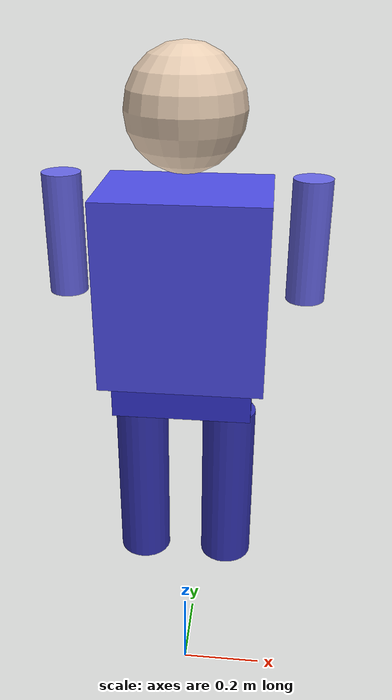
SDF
<?xml version="1.0" ?>
<sdf version="1.10">
  <model name="humanoid_robot">
    <static>false</static>

    <!-- Base/Pelvis Link -->
    <link name="pelvis">
      <pose>0 0 0.9 0 0 0</pose>
      <inertial>
        <mass>10.0</mass>
        <inertia>
          <ixx>0.1</ixx>
          <ixy>0</ixy>
          <ixz>0</ixz>
          <iyy>0.1</iyy>
          <iyz>0</iyz>
          <izz>0.1</izz>
        </inertia>
      </inertial>
      <visual name="pelvis_visual">
        <geometry>
          <box>
            <size>0.3 0.2 0.15</size>
          </box>
        </geometry>
        <material>
          <ambient>0.2 0.2 0.8 1</ambient>
          <diffuse>0.2 0.2 0.8 1</diffuse>
        </material>
      </visual>
      <collision name="pelvis_collision">
        <geometry>
          <box>
            <size>0.3 0.2 0.15</size>
          </box>
        </geometry>
      </collision>
    </link>

    <!-- Torso Link -->
    <link name="torso">
      <pose>0 0 1.1 0 0 0</pose>
      <inertial>
        <mass>15.0</mass>
        <inertia>
          <ixx>0.2</ixx>
          <ixy>0</ixy>
          <ixz>0</ixz>
          <iyy>0.2</iyy>
          <iyz>0</iyz>
          <izz>0.15</izz>
        </inertia>
      </inertial>
      <visual name="torso_visual">
        <geometry>
          <box>
            <size>0.35 0.25 0.4</size>
          </box>
        </geometry>
        <material>
          <ambient>0.3 0.3 0.9 1</ambient>
          <diffuse>0.3 0.3 0.9 1</diffuse>
        </material>
      </visual>
      <collision name="torso_collision">
        <geometry>
          <box>
            <size>0.35 0.25 0.4</size>
          </box>
        </geometry>
      </collision>
    </link>

    <!-- Head Link -->
    <link name="head">
      <pose>0 0 1.45 0 0 0</pose>
      <inertial>
        <mass>5.0</mass>
        <inertia>
          <ixx>0.03</ixx>
          <ixy>0</ixy>
          <ixz>0</ixz>
          <iyy>0.03</iyy>
          <iyz>0</iyz>
          <izz>0.03</izz>
        </inertia>
      </inertial>
      <visual name="head_visual">
        <geometry>
          <sphere>
            <radius>0.12</radius>
          </sphere>
        </geometry>
        <material>
          <ambient>0.9 0.8 0.7 1</ambient>
          <diffuse>0.9 0.8 0.7 1</diffuse>
        </material>
      </visual>
      <collision name="head_collision">
        <geometry>
          <sphere>
            <radius>0.12</radius>
          </sphere>
        </geometry>
      </collision>
    </link>

    <!-- Left Upper Arm -->
    <link name="left_upper_arm">
      <pose>0.25 0 1.2 0 0 0</pose>
      <inertial>
        <mass>2.0</mass>
        <inertia>
          <ixx>0.01</ixx>
          <ixy>0</ixy>
          <ixz>0</ixz>
          <iyy>0.01</iyy>
          <iyz>0</iyz>
          <izz>0.005</izz>
        </inertia>
      </inertial>
      <visual name="left_upper_arm_visual">
        <geometry>
          <cylinder>
            <radius>0.04</radius>
            <length>0.25</length>
          </cylinder>
        </geometry>
        <material>
          <ambient>0.4 0.4 0.9 1</ambient>
          <diffuse>0.4 0.4 0.9 1</diffuse>
        </material>
      </visual>
      <collision name="left_upper_arm_collision">
        <geometry>
          <cylinder>
            <radius>0.04</radius>
            <length>0.25</length>
          </cylinder>
        </geometry>
      </collision>
    </link>

    <!-- Right Upper Arm -->
    <link name="right_upper_arm">
      <pose>-0.25 0 1.2 0 0 0</pose>
      <inertial>
        <mass>2.0</mass>
        <inertia>
          <ixx>0.01</ixx>
          <ixy>0</ixy>
          <ixz>0</ixz>
          <iyy>0.01</iyy>
          <iyz>0</iyz>
          <izz>0.005</izz>
        </inertia>
      </inertial>
      <visual name="right_upper_arm_visual">
        <geometry>
          <cylinder>
            <radius>0.04</radius>
            <length>0.25</length>
          </cylinder>
        </geometry>
        <material>
          <ambient>0.4 0.4 0.9 1</ambient>
          <diffuse>0.4 0.4 0.9 1</diffuse>
        </material>
      </visual>
      <collision name="right_upper_arm_collision">
        <geometry>
          <cylinder>
            <radius>0.04</radius>
            <length>0.25</length>
          </cylinder>
        </geometry>
      </collision>
    </link>

    <!-- Left Upper Leg -->
    <link name="left_upper_leg">
      <pose>0.1 0 0.6 0 0 0</pose>
      <inertial>
        <mass>5.0</mass>
        <inertia>
          <ixx>0.05</ixx>
          <ixy>0</ixy>
          <ixz>0</ixz>
          <iyy>0.05</iyy>
          <iyz>0</iyz>
          <izz>0.01</izz>
        </inertia>
      </inertial>
      <visual name="left_upper_leg_visual">
        <geometry>
          <cylinder>
            <radius>0.06</radius>
            <length>0.4</length>
          </cylinder>
        </geometry>
        <material>
          <ambient>0.2 0.2 0.7 1</ambient>
          <diffuse>0.2 0.2 0.7 1</diffuse>
        </material>
      </visual>
      <collision name="left_upper_leg_collision">
        <geometry>
          <cylinder>
            <radius>0.06</radius>
            <length>0.4</length>
          </cylinder>
        </geometry>
      </collision>
    </link>

    <!-- Right Upper Leg -->
    <link name="right_upper_leg">
      <pose>-0.1 0 0.6 0 0 0</pose>
      <inertial>
        <mass>5.0</mass>
        <inertia>
          <ixx>0.05</ixx>
          <ixy>0</ixy>
          <ixz>0</ixz>
          <iyy>0.05</iyy>
          <iyz>0</iyz>
          <izz>0.01</izz>
        </inertia>
      </inertial>
      <visual name="right_upper_leg_visual">
        <geometry>
          <cylinder>
            <radius>0.06</radius>
            <length>0.4</length>
          </cylinder>
        </geometry>
        <material>
          <ambient>0.2 0.2 0.7 1</ambient>
          <diffuse>0.2 0.2 0.7 1</diffuse>
        </material>
      </visual>
      <collision name="right_upper_leg_collision">
        <geometry>
          <cylinder>
            <radius>0.06</radius>
            <length>0.4</length>
          </cylinder>
        </geometry>
      </collision>
    </link>

    <!-- Joints -->
    <joint name="pelvis_to_torso" type="fixed">
      <parent>pelvis</parent>
      <child>torso</child>
    </joint>

    <joint name="torso_to_head" type="revolute">
      <parent>torso</parent>
      <child>head</child>
      <axis>
        <xyz>0 0 1</xyz>
        <limit>
          <lower>-1.57</lower>
          <upper>1.57</upper>
        </limit>
      </axis>
    </joint>

    <joint name="left_shoulder" type="revolute">
      <parent>torso</parent>
      <child>left_upper_arm</child>
      <axis>
        <xyz>1 0 0</xyz>
        <limit>
          <lower>-3.14</lower>
          <upper>3.14</upper>
        </limit>
      </axis>
    </joint>

    <joint name="right_shoulder" type="revolute">
      <parent>torso</parent>
      <child>right_upper_arm</child>
      <axis>
        <xyz>1 0 0</xyz>
        <limit>
          <lower>-3.14</lower>
          <upper>3.14</upper>
        </limit>
      </axis>
    </joint>

    <joint name="left_hip" type="revolute">
      <parent>pelvis</parent>
      <child>left_upper_leg</child>
      <axis>
        <xyz>1 0 0</xyz>
        <limit>
          <lower>-1.57</lower>
          <upper>1.57</upper>
        </limit>
      </axis>
    </joint>

    <joint name="right_hip" type="revolute">
      <parent>pelvis</parent>
      <child>right_upper_leg</child>
      <axis>
        <xyz>1 0 0</xyz>
        <limit>
          <lower>-1.57</lower>
          <upper>1.57</upper>
        </limit>
      </axis>
    </joint>

  </model>
</sdf>
